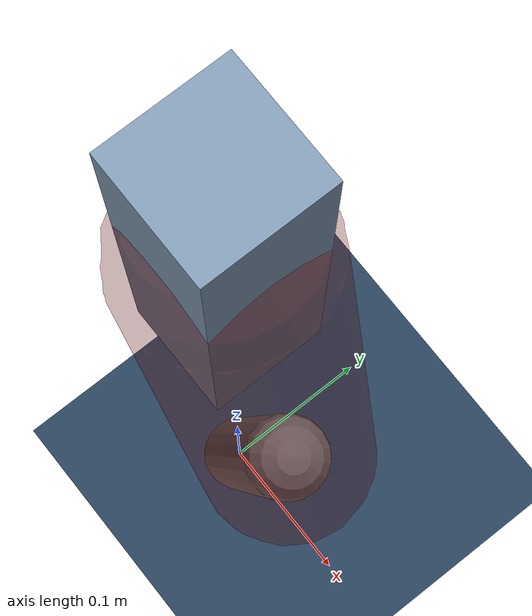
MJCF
<mujoco model="Hopper2D">
	<compiler inertiafromgeom="true" angle="radian" />
	<option timestep="0.001" integrator="implicit" cone="elliptic" solver="Newton" tolerance="1e-10" />

	<default>
		<geom contype="1" conaffinity="1" condim="3" friction="2 0.005 0.0001" solref="0.005 1" />
		<joint limited="true" damping="0.1" />
	</default>

	<asset>
		<texture name="skybox" type="skybox" builtin="gradient" rgb1=".4 .6 .8" rgb2="0 0 0" width="800" height="800" />
		<texture name="grid" type="2d" builtin="checker" rgb1=".1 .2 .3" rgb2=".2 .3 .4" width="300" height="300" mark="edge" markrgb=".2 .3 .4" />
		<material name="ground" texture="grid" texrepeat="1 1" texuniform="true" reflectance="0.1" />
		<material name="leg" rgba="0.5 0.6 0.7 1" />
	</asset>

	<worldbody>

		<geom name="floor" type="plane" size="5 5 0.25" material="ground" />

		<light directional="false" diffuse="0.8 0.8 0.8" specular="0.3 0.3 0.3" pos="0 0 2" dir="0 0 -1" />
		<light mode="targetbodycom" target="base" directional="false" diffuse="0.8 0.8 0.8" specular="0.3 0.3 0.3" pos="0 0 2" dir="0 0 -1" />

		<camera name="fixed" pos="0 -2 1" xyaxes="1 0 0 0 0 1" />
		<camera name="tracking" mode="trackcom" pos="0 -3 1" />

		<body name="root" pos="0 0 0.4635656743992781">
			<joint name="slide_x" type="slide" axis="1 0 0" range="-100 100" />
			<joint name="slide_z" type="slide" axis="0 0 1" range="0 10" />

			<body name="base" pos="0 0 0">
				<geom name="torso" type="box" size="0.03 0.03 0.1" mass="2.154" material="leg" />

				<body name="link1" pos="0 0 0" euler="0 1.3845002024307977 0">
					<joint type="hinge" axis="0 -1 0" pos="0 0 0" name="hinge1" limited="true" range="-3.14 3.14" stiffness="0" damping="0.1" />
					<geom name="thigh" type="capsule" fromto="0 0 0 0.2600098584869622 0 0" size="0.05" rgba="0.5 0 0 0.3" mass="0.8824256320661016" />

					<body name="link2" pos="0.2600098584869622 0 0" euler="0 0.41376335538701675 0">
						<joint type="hinge" axis="0 -1 0" pos="0 0 0" name="hinge2" limited="true" range="-3.14 3.14" stiffness="0" damping="0.1" />
						<geom name="shank" type="capsule" fromto="0 0 0 0.21355581591231595 0 0" size="0.025" mass="0.41230023432108437" />

					</body>
				</body>
			</body>
		</body>
	</worldbody>

	<actuator>
		<motor name="torque1" joint="hinge1" ctrlrange="-37.34651344232263 37.34651344232263" ctrllimited="true" gear="1" />
		<motor name="torque2" joint="hinge2" ctrlrange="-96.22333569602633 96.22333569602633" ctrllimited="true" gear="1" />
	</actuator>
</mujoco>
